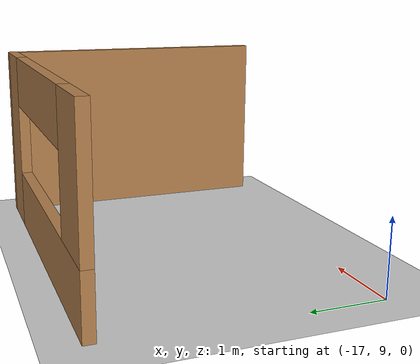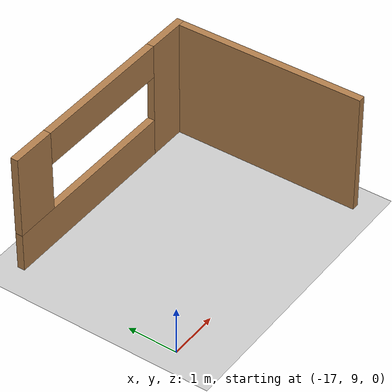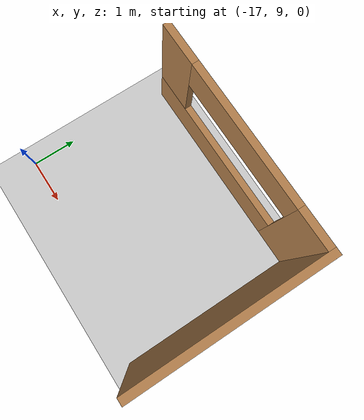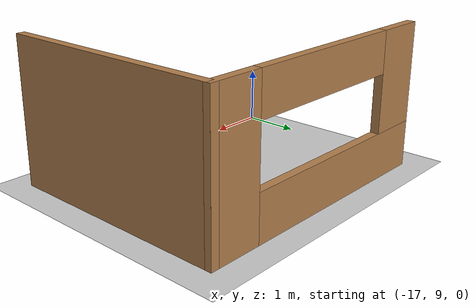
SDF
<sdf version="1.6">
 <world name="default">
  <model name="ground_plane">
   <static>1</static>
   <link name="link">
    <collision name="collision">
     <geometry><plane><normal>0 0 1</normal><size>100 100</size></plane></geometry>
     <surface><friction><ode><mu>100</mu><mu2>50</mu2></ode></friction></surface>
    </collision>
    <visual name="visual">
     <cast_shadows>0</cast_shadows>
     <geometry><plane><normal>0 0 1</normal><size>100 100</size></plane></geometry>
     <material>
      <script><uri>file://media/materials/scripts/gazebo.material</uri><name>Gazebo/Grey</name></script>
     </material>
    </visual>
   </link>
  </model>
  <model name="Building">
   <pose>5.7189 -2.01548 0 0 -0 0</pose>
   <link name="Wall_17">
    <collision name="Wall_17_Collision">
     <geometry><box><size>4 0.15 2.5</size></box></geometry>
     <pose>0 0 1.25 0 -0 0</pose>
    </collision>
    <visual name="Wall_17_Visual">
     <pose>0 0 1.25 0 -0 0</pose>
     <geometry><box><size>4 0.15 2.5</size></box></geometry>
     <material>
      <script><uri>file://media/materials/scripts/gazebo.material</uri><name>Gazebo/Wood</name></script>
      <ambient>1 1 1 1</ambient>
     </material>
     <meta><layer>0</layer></meta>
    </visual>
    <pose>-17.8248 12.5249 0 0 -0 1.57083</pose>
   </link>
   <link name="Wall_18">
    <pose>-20.1748 14.4499 0 0 -0 3.1415</pose>
    <visual name="Wall_18_Visual_0">
     <pose>-1.954 0 1.25 0 -0 0</pose>
     <geometry><box><size>0.941881 0.15 2.5</size></box></geometry>
     <material>
      <script><uri>file://media/materials/scripts/gazebo.material</uri><name>Gazebo/Wood</name></script>
      <ambient>1 1 1 1</ambient>
     </material>
     <meta><layer>0</layer></meta>
    </visual>
    <collision name="Wall_18_Collision_0">
     <geometry><box><size>0.941881 0.15 2.5</size></box></geometry>
     <pose>-1.954 0 1.25 0 -0 0</pose>
    </collision>
    <visual name="Wall_18_Visual_1">
     <pose>0.470941 0 0.4 0 -0 0</pose>
     <geometry><box><size>3.908 0.15 0.8</size></box></geometry>
     <material>
      <script><uri>file://media/materials/scripts/gazebo.material</uri><name>Gazebo/Wood</name></script>
      <ambient>1 1 1 1</ambient>
     </material>
     <meta><layer>0</layer></meta>
    </visual>
    <collision name="Wall_18_Collision_1">
     <geometry><box><size>3.908 0.15 0.8</size></box></geometry>
     <pose>0.470941 0 0.4 0 -0 0</pose>
    </collision>
    <visual name="Wall_18_Visual_2">
     <pose>1.97094 0 1.65 0 -0 0</pose>
     <geometry><box><size>0.907999 0.15 1.7</size></box></geometry>
     <material>
      <script><uri>file://media/materials/scripts/gazebo.material</uri><name>Gazebo/Wood</name></script>
      <ambient>1 1 1 1</ambient>
     </material>
     <meta><layer>0</layer></meta>
    </visual>
    <collision name="Wall_18_Collision_2">
     <geometry><box><size>0.907999 0.15 1.7</size></box></geometry>
     <pose>1.97094 0 1.65 0 -0 0</pose>
    </collision>
    <visual name="Wall_18_Visual_3">
     <pose>0.016941 0 2.15 0 -0 0</pose>
     <geometry><box><size>3 0.15 0.7</size></box></geometry>
     <material>
      <script><uri>file://media/materials/scripts/gazebo.material</uri><name>Gazebo/Wood</name></script>
      <ambient>1 1 1 1</ambient>
     </material>
     <meta><layer>0</layer></meta>
    </visual>
    <collision name="Wall_18_Collision_3">
     <geometry><box><size>3 0.15 0.7</size></box></geometry>
     <pose>0.016941 0 2.15 0 -0 0</pose>
    </collision>
   </link>
   <static>1</static>
  </model>
 </world>
</sdf>
